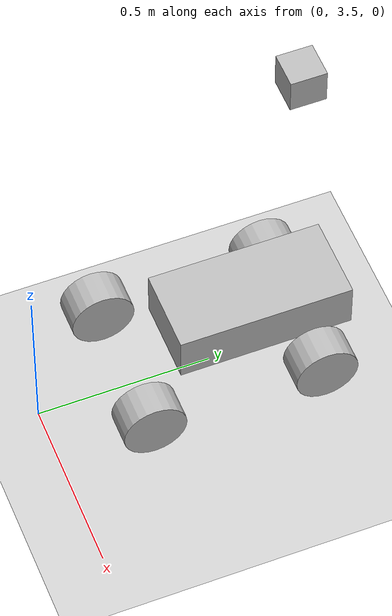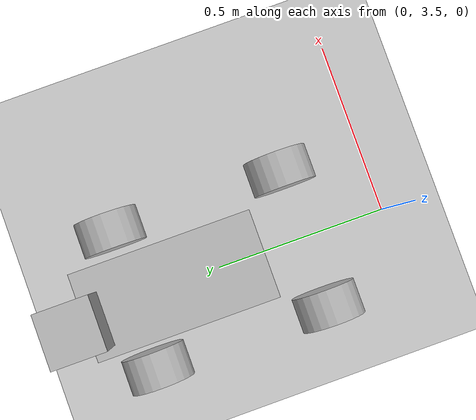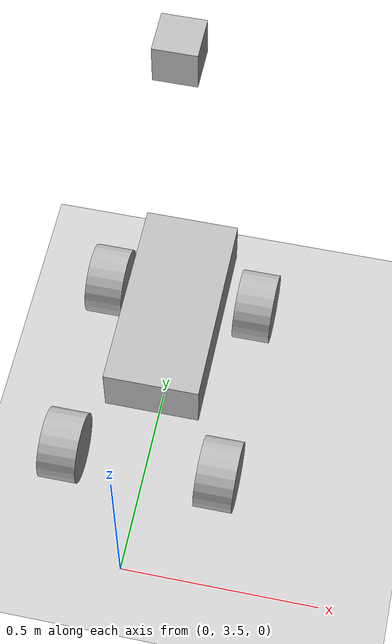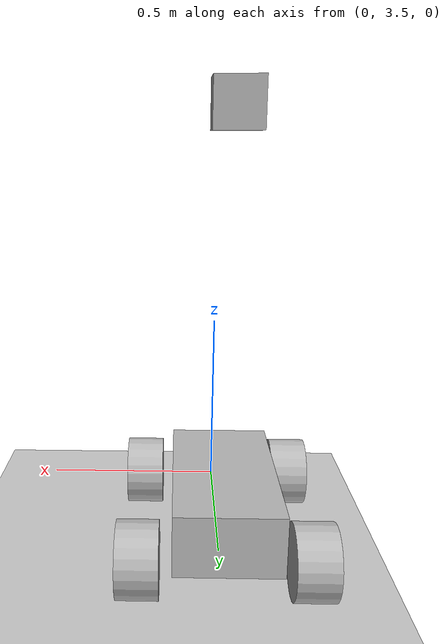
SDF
<?xml version="1.0" ?>
<sdf version="1.6">
    <world name="default">
        <gui>
            <plugin name="keyboard" filename="libKeyboardGUIPlugin.so"/>
        </gui>

        <include>
            <uri>model://sun</uri>
        </include>

        <include>
            <uri>model://ground_plane</uri>
        </include>

        <model name="wheel_tracked">
            <pose frame=''>0 4 0.1 0 0 -1.5708</pose>
            <link name='base_link'>
                <pose frame=''>0 0 0  0 0 0</pose>
                <inertial>
                    <pose frame=''>-0.122 0 0.118  1.5708 0 0</pose>
                    <mass>1.0</mass>
                    <inertia>
                        <ixx>0.010019</ixx>
                        <ixy>0</ixy>
                        <ixz>0</ixz>
                        <iyy>0.0345043</iyy>
                        <iyz>0</iyz>
                        <izz>0.0302044</izz>
                    </inertia>
                </inertial>
                <collision name='base_link_collision'>
                    <pose frame=''>-0.122 0 0.118 0 0 0</pose>
                    <geometry>
                        <box>
                            <size>0.50017 0.24093 0.139</size>
                        </box>
                    </geometry>
                </collision>
                <visual name='base_link_visual'>
                    <pose frame=''>-0.122 0 0.118 0 0 0</pose>
                    <geometry>
                        <box>
                            <size>0.50017 0.24093 0.139</size>
                        </box>
                    </geometry>
                </visual>
                <self_collide>0</self_collide>
                <gravity>1</gravity>
                <kinematic>0</kinematic>
            </link>

            <link name='load'>
                <pose>-0.25 0 1  0 0 0</pose>
                <inertial>
                    <pose frame="">0 0 -1   0 0 0</pose>
                    <mass>13.0</mass>
                    <inertia>
                        <ixx>0.10019</ixx>
                        <ixy>0</ixy>
                        <ixz>0</ixz>
                        <iyy>0.345043</iyy>
                        <iyz>0</iyz>
                        <izz>0.302044</izz>
                    </inertia>
                </inertial>
                <collision name='base_link_collision'>
                    <geometry>
                        <box>
                            <size>0.1 0.1 0.1</size>
                        </box>
                    </geometry>
                </collision>
                <visual name='base_link_visual'>
                    <geometry>
                        <box>
                            <size>0.1 0.1 0.1</size>
                        </box>
                    </geometry>
                </visual>
                <self_collide>0</self_collide>
                <gravity>1</gravity>
                <kinematic>0</kinematic>
            </link>
            <joint name='load_j' type='fixed'>
                <child>load</child>
                <parent>base_link</parent>
            </joint>

            <link name='left_track'>
                <pose frame=''>0 0.1985 0 0 0 0</pose>
                <inertial>
                    <mass>2.06</mass>
                    <inertia>
                        <ixx>0.002731</ixx>
                        <ixy>0</ixy>
                        <ixz>0</ixz>
                        <iyy>0.032554</iyy>
                        <iyz>0</iyz>
                        <izz>0.031391</izz>
                    </inertia>
                </inertial>
                <collision name='left_track_collision'>
                    <pose frame=''>0 0 0.01855 1.5708 0 1.5708</pose>
                    <geometry>
                        <box>
                            <size>0.009728 0.018094 0.05</size>
                        </box>
                    </geometry>
                    <surface>
                        <friction>
                            <ode>
                                <mu>0.5</mu>
                                <mu2>3.19858</mu2>
                            </ode>
                        </friction>
                        <contact>
                            <collide_bitmask>0</collide_bitmask>
                        </contact>
                    </surface>
                </collision>
            </link>
            <joint name='left_track_j' type='revolute'>
                <child>left_track</child>
                <parent>base_link</parent>
                <axis>
                    <xyz>0 1 0</xyz>
                    <limit>
                        <lower>0</lower>
                        <upper>0</upper>
                        <effort>0</effort>
                        <velocity>4</velocity>
                    </limit>
                    <use_parent_model_frame>1</use_parent_model_frame>
                </axis>
            </joint>
            <link name='left_track_wheel1'>
                <pose frame=''>0.25 0.1985 0.01855 0 0 0</pose>
                <inertial>
                    <mass>0.5</mass>
                    <inertia>
                        <ixx>0.001</ixx>
                        <ixy>0</ixy>
                        <ixz>0</ixz>
                        <iyy>0.001</iyy>
                        <iyz>0</iyz>
                        <izz>0.001</izz>
                    </inertia>
                </inertial>
                <collision name='left_track_wheel1_collision'>
                    <pose frame=''>0 0 0 1.5708 0 0</pose>
                    <geometry>
                        <cylinder>
                            <length>0.09728</length>
                            <radius>0.09047</radius>
                        </cylinder>
                    </geometry>
                    <surface>
                        <friction>
                            <ode>
                                <mu>0.5</mu>
                                <mu2>3.19858</mu2>
                            </ode>
                        </friction>
                    </surface>
                </collision>
                <visual name='left_track_wheel1_visual'>
                    <pose frame=''>0 0 0 1.5708 0 0</pose>
                    <geometry>
                        <cylinder>
                            <length>0.09728</length>
                            <radius>0.09047</radius>
                        </cylinder>
                    </geometry>
                </visual>
            </link>
            <joint name='left_track_wheel1_j' type='revolute'>
                <child>left_track_wheel1</child>
                <parent>left_track</parent>
                <axis>
                    <xyz>0 1 0</xyz>
                    <limit>
                        <lower>-1e+16</lower>
                        <upper>1e+16</upper>
                    </limit>
                    <use_parent_model_frame>1</use_parent_model_frame>
                </axis>
            </joint>

            <link name='left_track_wheel4'>
                <pose frame=''>-0.25 0.1985 0.01855 0 0 0</pose>
                <inertial>
                    <mass>0.5</mass>
                    <inertia>
                        <ixx>0.001</ixx>
                        <ixy>0</ixy>
                        <ixz>0</ixz>
                        <iyy>0.001</iyy>
                        <iyz>0</iyz>
                        <izz>0.001</izz>
                    </inertia>
                </inertial>
                <collision name='left_track_wheel4_collision'>
                    <pose frame=''>0 0 0 1.5708 0 0</pose>
                    <geometry>
                        <cylinder>
                            <length>0.09728</length>
                            <radius>0.09047</radius>
                        </cylinder>
                    </geometry>
                    <surface>
                        <friction>
                            <ode>
                                <mu>0.5</mu>
                                <mu2>3.19858</mu2>
                            </ode>
                        </friction>
                    </surface>
                </collision>
                <visual name='left_track_wheel4_visual'>
                    <pose frame=''>0 0 0 1.5708 0 0</pose>
                    <geometry>
                        <cylinder>
                            <length>0.09728</length>
                            <radius>0.09047</radius>
                        </cylinder>
                    </geometry>
                </visual>
            </link>
            <joint name='left_track_wheel4_j' type='revolute'>
                <child>left_track_wheel4</child>
                <parent>left_track</parent>
                <axis>
                    <xyz>0 1 0</xyz>
                    <limit>
                        <lower>-1e+16</lower>
                        <upper>1e+16</upper>
                    </limit>
                    <use_parent_model_frame>1</use_parent_model_frame>
                </axis>
            </joint>

            <link name='right_track'>
                <pose frame=''>0 -0.1985 0 0 0 0</pose>
                <inertial>
                    <mass>2.06</mass>
                    <inertia>
                        <ixx>0.002731</ixx>
                        <ixy>0</ixy>
                        <ixz>0</ixz>
                        <iyy>0.032554</iyy>
                        <iyz>0</iyz>
                        <izz>0.031391</izz>
                    </inertia>
                </inertial>
                <collision name='right_track_collision'>
                    <pose frame=''>0 0 0.01855 1.5708 0 1.5708</pose>
                    <geometry>
                        <box>
                            <size>0.009728 0.018094 0.05</size>
                        </box>
                    </geometry>
                    <surface>
                        <friction>
                            <ode>
                                <mu>0.5</mu>
                                <mu2>3.19858</mu2>
                            </ode>
                        </friction>
                        <contact>
                            <collide_bitmask>0</collide_bitmask>
                        </contact>
                    </surface>
                </collision>
            </link>
            <joint name='right_track_j' type='revolute'>
                <child>right_track</child>
                <parent>base_link</parent>
                <axis>
                    <xyz>0 1 0</xyz>
                    <limit>
                        <lower>0</lower>
                        <upper>0</upper>
                        <effort>0</effort>
                        <velocity>4</velocity>
                    </limit>
                    <use_parent_model_frame>1</use_parent_model_frame>
                </axis>
            </joint>

            <link name='right_track_wheel1'>
                <pose frame=''>0.25 -0.1985 0.01855 0 0 0</pose>
                <inertial>
                    <mass>0.5</mass>
                    <inertia>
                        <ixx>0.001</ixx>
                        <ixy>0</ixy>
                        <ixz>0</ixz>
                        <iyy>0.001</iyy>
                        <iyz>0</iyz>
                        <izz>0.001</izz>
                    </inertia>
                </inertial>
                <collision name='right_track_wheel1_collision'>
                    <pose frame=''>0 0 0 1.5708 0 0</pose>
                    <geometry>
                        <cylinder>
                            <length>0.09728</length>
                            <radius>0.09047</radius>
                        </cylinder>
                    </geometry>
                    <surface>
                        <friction>
                            <ode>
                                <mu>0.5</mu>
                                <mu2>3.19858</mu2>
                            </ode>
                        </friction>
                    </surface>
                </collision>
                <visual name='right_track_wheel1_visual'>
                    <pose frame=''>0 0 0 1.5708 0 0</pose>
                    <geometry>
                        <cylinder>
                            <length>0.09728</length>
                            <radius>0.09047</radius>
                        </cylinder>
                    </geometry>
                </visual>
            </link>
            <joint name='right_track_wheel1_j' type='revolute'>
                <child>right_track_wheel1</child>
                <parent>right_track</parent>
                <axis>
                    <xyz>0 1 0</xyz>
                    <limit>
                        <lower>-1e+16</lower>
                        <upper>1e+16</upper>
                    </limit>
                    <use_parent_model_frame>1</use_parent_model_frame>
                </axis>
            </joint>

            <link name='right_track_wheel4'>
                <pose frame=''>-0.25 -0.1985 0.01855 0 0 0</pose>
                <inertial>
                    <mass>0.5</mass>
                    <inertia>
                        <ixx>0.001</ixx>
                        <ixy>0</ixy>
                        <ixz>0</ixz>
                        <iyy>0.001</iyy>
                        <iyz>0</iyz>
                        <izz>0.001</izz>
                    </inertia>
                </inertial>
                <collision name='right_track_wheel4_collision'>
                    <pose frame=''>0 0 0 1.5708 0 0</pose>
                    <geometry>
                        <cylinder>
                            <length>0.09728</length>
                            <radius>0.09047</radius>
                        </cylinder>
                    </geometry>
                    <surface>
                        <friction>
                            <ode>
                                <mu>0.5</mu>
                                <mu2>3.19858</mu2>
                            </ode>
                        </friction>
                    </surface>
                </collision>
                <visual name='right_track_wheel4_visual'>
                    <pose frame=''>0 0 0 1.5708 0 0</pose>
                    <geometry>
                        <cylinder>
                            <length>0.09728</length>
                            <radius>0.09047</radius>
                        </cylinder>
                    </geometry>
                </visual>
            </link>
            <joint name='right_track_wheel4_j' type='revolute'>
                <child>right_track_wheel4</child>
                <parent>right_track</parent>
                <axis>
                    <xyz>0 1 0</xyz>
                    <limit>
                        <lower>-1e+16</lower>
                        <upper>1e+16</upper>
                    </limit>
                    <use_parent_model_frame>1</use_parent_model_frame>
                </axis>
            </joint>

            <plugin name='wheel_tracked_vehicle_controller' filename='libWheelTrackedVehiclePlugin.so'>
                <left_joint>left_track_wheel1_j</left_joint>
                <right_joint>right_track_wheel1_j</right_joint>
                <left_joint>left_track_wheel4_j</left_joint>
                <right_joint>right_track_wheel4_j</right_joint>
                <!-- It'd be nicer to have a higher value here, but there's bug
                 https://github.com/osrf/gazebo/issues/2068
                 TODO The bug was already fixed but it is still broken. -->
                <track_mu>1.0</track_mu>
                <track_mu2>0.5</track_mu2>
            </plugin>

            <plugin filename="libKeysToCmdVelPlugin.so" name="keyboard_control">
                <cmd_vel_topic>~/wheel_tracked/cmd_vel</cmd_vel_topic>
                <key_controls>
                    <!-- WSAD controls + space/Enter for stop -->
                    <stop>13</stop>
                    <stop>32</stop>
                    <accelerate>119</accelerate>
                    <decelerate>115</decelerate>
                    <left>97</left>
                    <right>100</right>
                </key_controls>
            </plugin>
        </model>

    </world>
</sdf>
